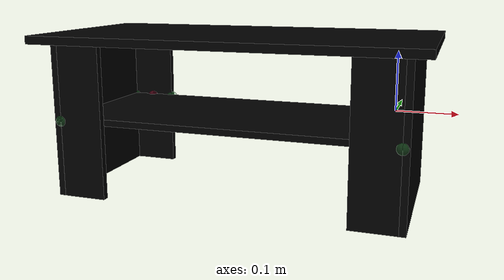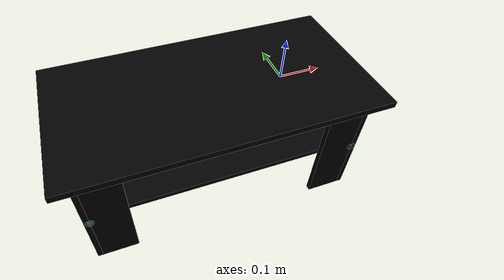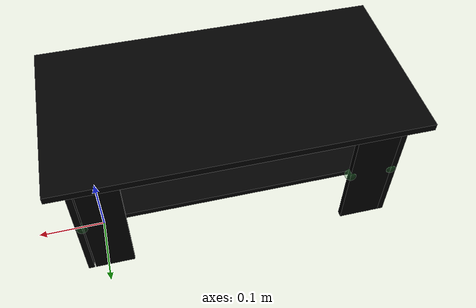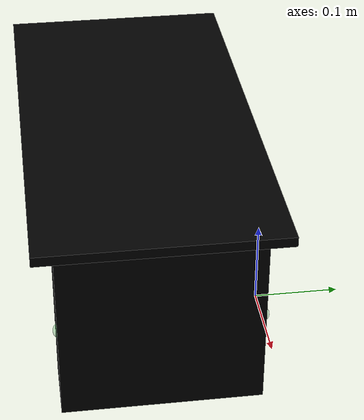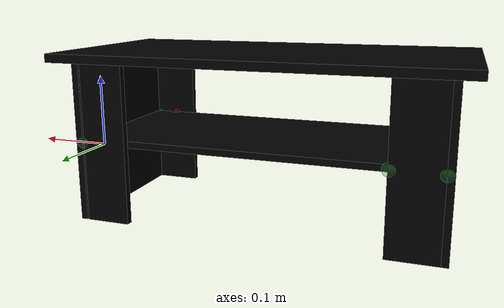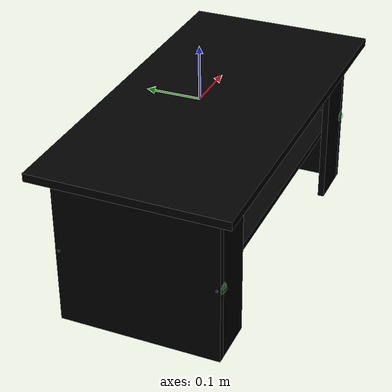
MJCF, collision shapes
<mujoco model="table_benno_0141">
  <custom>
    <numeric data="0.481747 0.210961 0.00505 -0.003953 0.003953 0.707096 -0.707096" name="0_part0_initpos" />
    <numeric data="0.071332 -0.159161 0.00632 0.0 -0.999969 -0.007934 -0.0" name="7_part7_initpos" />
    <numeric data="-0.419935 -0.164663 0.00505 0.707099 -0.0032 0.7071 0.0032" name="6_part6_initpos" />
    <numeric data="0.55709 -0.143364 0.00505 6.8e-05 0.707107 6.8e-05 -0.707107" name="5_part5_initpos" />
    <numeric data="0.086775 0.165266 0.00505 0.999999 -0.0 -0.0 -0.001302" name="4_part4_initpos" />
    <numeric data="0.635713 0.217374 0.00505 0.707104 0.707104 -0.00196 -0.00196" name="3_part3_initpos" />
    <numeric data="-0.457154 0.177846 0.00505 0.707104 0.707105 0.001793 0.001793" name="2_part2_initpos" />
    <numeric data="-0.295801 0.17976 0.00505 0.707089 -0.707089 -0.005055 0.005055" name="1_part1_initpos" />
  </custom>
  <asset>
    <mesh file="table_benno_0141/0.stl" name="part0" scale="0.0005 0.0005 0.0005" />
    <mesh file="table_benno_0141/7.stl" name="part7" scale="0.0005 0.0005 0.0005" />
    <mesh file="table_benno_0141/6.stl" name="part6" scale="0.0005 0.0005 0.0005" />
    <mesh file="table_benno_0141/5.stl" name="part5" scale="0.0005 0.0005 0.0005" />
    <mesh file="table_benno_0141/4.stl" name="part4" scale="0.0005 0.0005 0.0005" />
    <mesh file="table_benno_0141/3.stl" name="part3" scale="0.0005 0.0005 0.0005" />
    <mesh file="table_benno_0141/2.stl" name="part2" scale="0.0005 0.0005 0.0005" />
    <mesh file="table_benno_0141/1.stl" name="part1" scale="0.0005 0.0005 0.0005" />
  </asset>
  <equality>
    <weld active="false" body1="1_part1" body2="4_part4" solimp="1 1 0.5" solref="0.01 0.3" />
    <weld active="false" body1="0_part0" body2="4_part4" solimp="1 1 0.5" solref="0.01 0.3" />
    <weld active="false" body1="3_part3" body2="4_part4" solimp="1 1 0.5" solref="0.01 0.3" />
    <weld active="false" body1="2_part2" body2="4_part4" solimp="1 1 0.5" solref="0.01 0.3" />
    <weld active="false" body1="1_part1" body2="6_part6" solimp="1 1 0.5" solref="0.01 0.3" />
    <weld active="false" body1="1_part1" body2="5_part5" solimp="1 1 0.5" solref="0.01 0.3" />
    <weld active="false" body1="0_part0" body2="6_part6" solimp="1 1 0.5" solref="0.01 0.3" />
    <weld active="false" body1="0_part0" body2="5_part5" solimp="1 1 0.5" solref="0.01 0.3" />
    <weld active="false" body1="3_part3" body2="6_part6" solimp="1 1 0.5" solref="0.01 0.3" />
    <weld active="false" body1="3_part3" body2="5_part5" solimp="1 1 0.5" solref="0.01 0.3" />
    <weld active="false" body1="2_part2" body2="6_part6" solimp="1 1 0.5" solref="0.01 0.3" />
    <weld active="false" body1="2_part2" body2="5_part5" solimp="1 1 0.5" solref="0.01 0.3" />
    <weld active="false" body1="7_part7" body2="6_part6" solimp="1 1 0.5" solref="0.01 0.3" />
    <weld active="false" body1="7_part7" body2="5_part5" solimp="1 1 0.5" solref="0.01 0.3" />
  </equality>
  <worldbody>
    <body name="0_part0" pos="0.0 0.0 0.0" quat="1 0 0 0">
      <geom conaffinity="0" contype="0" density="0" mesh="part0" name="0_part0_mesh" pos="0.0 0.0 0.0" rgba="0.82 0.71 0.55 1" type="mesh" />
      <site name="0_part0_horizontal_radius_site" pos="0.0 0.0 0.0" quat="1 0 0 0" rgba="0 0 0 0" size="0.01" />
      <site name="0_part0_top_site" pos="0.0 0.0 0.12065000155" quat="1 0 0 0" rgba="0 0 0 0" size="0.01" />
      <site name="0_part0_bottom_site" pos="0.0 0.0 -0.12065000155" quat="1 0 0 0" rgba="0 0 0 0" size="0.01" />
      <site name="0_part0_corner_site8" pos="-0.0349250183 0.00508 0.12065000155" quat="1 0 0 0" rgba="0 0 0 0" size="0.01" />
      <site name="0_part0_corner_site7" pos="0.0349250183 0.00508 0.12065000155" quat="1 0 0 0" rgba="0 0 0 0" size="0.01" />
      <site name="0_part0_corner_site6" pos="0.0349250183 -0.00508 0.12065000155" quat="1 0 0 0" rgba="0 0 0 0" size="0.01" />
      <site name="0_part0_corner_site5" pos="-0.0349250183 -0.00508 0.12065000155" quat="1 0 0 0" rgba="0 0 0 0" size="0.01" />
      <site name="0_part0_corner_site4" pos="-0.0349250183 0.00508 -0.12065000155" quat="1 0 0 0" rgba="0 0 0 0" size="0.01" />
      <site name="0_part0_corner_site3" pos="0.0349250183 0.00508 -0.12065000155" quat="1 0 0 0" rgba="0 0 0 0" size="0.01" />
      <site name="0_part0_corner_site2" pos="0.0349250183 -0.00508 -0.12065000155" quat="1 0 0 0" rgba="0 0 0 0" size="0.01" />
      <site name="0_part0_corner_site1" pos="-0.0349250183 -0.00508 -0.12065000155" quat="1 0 0 0" rgba="0 0 0 0" size="0.01" />
      <site name="leg-botpanel,0,180,conn_site2" pos="0.0 -0.005 0.0" quat="0.7071067 -0.7071068 0 0" rgba="0.9019 0.0980 0.2941 0.3" size="0.01" />
      <site name="leg-sidepanel,0,180,conn_site2" pos="0.035 0 0" quat="0.7071067 0 0.7071068 0" rgba="0.2352 0.7058 0.2941 0.3" size="0.01" />
      <geom density="50" name="noviz_collision_0_part0_0" pos="-0.001155665 0.0 0.003592" quat="1 0 0 0" rgba="0 0 0 0" size="0.033769355 0.00508 0.124242" solref="0.001 1" type="box" />
    </body>
    <body name="7_part7" pos="-0.2247900042 -0.11953875 0.12699999845" quat="1 0 0 0">
      <geom conaffinity="0" contype="0" density="0" mesh="part7" name="7_part7_mesh" pos="0.0 0.0 0.0" rgba="0.82 0.71 0.55 1" type="mesh" />
      <site name="7_part7_horizontal_radius_site" pos="0.0 0.0 0.0" quat="1 0 0 0" rgba="0 0 0 0" size="0.01" />
      <site name="7_part7_top_site" pos="0.0 0.0 0.00635" quat="1 0 0 0" rgba="0 0 0 0" size="0.01" />
      <site name="7_part7_bottom_site" pos="0.0 0.0 -0.00635" quat="1 0 0 0" rgba="0 0 0 0" size="0.01" />
      <site name="7_part7_corner_site8" pos="-0.295275 0.15001875 0.00635" quat="1 0 0 0" rgba="0 0 0 0" size="0.01" />
      <site name="7_part7_corner_site7" pos="0.295275 0.15001875 0.00635" quat="1 0 0 0" rgba="0 0 0 0" size="0.01" />
      <site name="7_part7_corner_site6" pos="0.295275 -0.15001875 0.00635" quat="1 0 0 0" rgba="0 0 0 0" size="0.01" />
      <site name="7_part7_corner_site5" pos="-0.295275 -0.15001875 0.00635" quat="1 0 0 0" rgba="0 0 0 0" size="0.01" />
      <site name="7_part7_corner_site4" pos="-0.295275 0.15001875 -0.00635" quat="1 0 0 0" rgba="0 0 0 0" size="0.01" />
      <site name="7_part7_corner_site3" pos="0.295275 0.15001875 -0.00635" quat="1 0 0 0" rgba="0 0 0 0" size="0.01" />
      <site name="7_part7_corner_site2" pos="0.295275 -0.15001875 -0.00635" quat="1 0 0 0" rgba="0 0 0 0" size="0.01" />
      <site name="7_part7_corner_site1" pos="-0.295275 -0.15001875 -0.00635" quat="1 0 0 0" rgba="0 0 0 0" size="0.01" />
      <site name="toppanel-sidepanel,0,180,conn_site2" pos="0.26129 0.0 -0.00635" quat="1 0 0 0" rgba="1.0 0.8823 0.0980 0.3" size="0.01" />
      <site name="toppanel-sidepanel,0,180,conn_site1" pos="-0.26471 0.0 -0.00635" quat="1 0 0 0" rgba="1.0 0.8823 0.0980 0.3" size="0.01" />
      <geom density="50" name="noviz_collision_7_part7_0" pos="0.0 0.0 0.0" quat="1 0 0 0" rgba="0 0 0 0" size="0.295275 0.15001875 0.00635" solref="0.001 1" type="box" />
    </body>
    <body name="6_part6" pos="-0.48958500644999997 -0.11953875 0.0" quat="1 0 0 0">
      <geom conaffinity="0" contype="0" density="0" mesh="part6" name="6_part6_mesh" pos="0.0 0.0 0.0" rgba="0.82 0.71 0.55 1" type="mesh" />
      <site name="6_part6_horizontal_radius_site" pos="-5e-11 -0.0 0.0" quat="1 0 0 0" rgba="0 0 0 0" size="0.01" />
      <site name="6_part6_top_site" pos="-5e-11 0.0 0.12065000155" quat="1 0 0 0" rgba="0 0 0 0" size="0.01" />
      <site name="6_part6_bottom_site" pos="-5e-11 0.0 -0.12065000155" quat="1 0 0 0" rgba="0 0 0 0" size="0.01" />
      <site name="6_part6_corner_site8" pos="-0.005080002300000001 0.12461875000000001 0.12065000155" quat="1 0 0 0" rgba="0 0 0 0" size="0.01" />
      <site name="6_part6_corner_site7" pos="0.00508000215 0.12461875000000001 0.12065000155" quat="1 0 0 0" rgba="0 0 0 0" size="0.01" />
      <site name="6_part6_corner_site6" pos="0.00508000215 -0.12461875000000001 0.12065000155" quat="1 0 0 0" rgba="0 0 0 0" size="0.01" />
      <site name="6_part6_corner_site5" pos="-0.005080002300000001 -0.12461875000000001 0.12065000155" quat="1 0 0 0" rgba="0 0 0 0" size="0.01" />
      <site name="6_part6_corner_site4" pos="-0.005080002300000001 0.12461875000000001 -0.12065000155" quat="1 0 0 0" rgba="0 0 0 0" size="0.01" />
      <site name="6_part6_corner_site3" pos="0.00508000215 0.12461875000000001 -0.12065000155" quat="1 0 0 0" rgba="0 0 0 0" size="0.01" />
      <site name="6_part6_corner_site2" pos="0.00508000215 -0.12461875000000001 -0.12065000155" quat="1 0 0 0" rgba="0 0 0 0" size="0.01" />
      <site name="6_part6_corner_site1" pos="-0.005080002300000001 -0.12461875000000001 -0.12065000155" quat="1 0 0 0" rgba="0 0 0 0" size="0.01" />
      <site name="sidepanel-toppanel,0,180,conn_site1" pos="8.499e-05 0.0 0.12065000000000001" quat="1 0 0 0" rgba="1.0 0.8823 0.0980 0.3" size="0.01" />
      <site name="sidepanel-leg,0,180,conn_site4" pos="0.004584990000000001 -0.11946125 0.0" quat="0.7071067 0 -0.7071068 0" rgba="0.2352 0.7058 0.2941 0.3" size="0.01" />
      <site name="sidepanel-leg,0,180,conn_site3" pos="0.004584990000000001 0.11953875 0.0" quat="0.7071067 0 -0.7071068 0" rgba="0.2352 0.7058 0.2941 0.3" size="0.01" />
      <geom density="50" name="noviz_collision_6_part6_0" pos="0.0 0.0 0.0" quat="1 0 0 0" rgba="0 0 0 0" size="0.005080015 0.12461875000000001 0.12065000000000001" solref="0.001 1" type="box" />
    </body>
    <body name="5_part5" pos="0.040004995800000005 -0.11953875 0.0" quat="1 0 0 0">
      <geom conaffinity="0" contype="0" density="0" mesh="part5" name="5_part5_mesh" pos="0.0 0.0 0.0" rgba="0.82 0.71 0.55 1" type="mesh" />
      <site name="5_part5_horizontal_radius_site" pos="0.0 -0.0 0.0" quat="1 0 0 0" rgba="0 0 0 0" size="0.01" />
      <site name="5_part5_top_site" pos="0.0 0.0 0.12065000155" quat="1 0 0 0" rgba="0 0 0 0" size="0.01" />
      <site name="5_part5_bottom_site" pos="0.0 0.0 -0.12065000155" quat="1 0 0 0" rgba="0 0 0 0" size="0.01" />
      <site name="5_part5_corner_site8" pos="-0.00508 0.12461875000000001 0.12065000155" quat="1 0 0 0" rgba="0 0 0 0" size="0.01" />
      <site name="5_part5_corner_site7" pos="0.00508 0.12461875000000001 0.12065000155" quat="1 0 0 0" rgba="0 0 0 0" size="0.01" />
      <site name="5_part5_corner_site6" pos="0.00508 -0.12461875000000001 0.12065000155" quat="1 0 0 0" rgba="0 0 0 0" size="0.01" />
      <site name="5_part5_corner_site5" pos="-0.00508 -0.12461875000000001 0.12065000155" quat="1 0 0 0" rgba="0 0 0 0" size="0.01" />
      <site name="5_part5_corner_site4" pos="-0.00508 0.12461875000000001 -0.12065000155" quat="1 0 0 0" rgba="0 0 0 0" size="0.01" />
      <site name="5_part5_corner_site3" pos="0.00508 0.12461875000000001 -0.12065000155" quat="1 0 0 0" rgba="0 0 0 0" size="0.01" />
      <site name="5_part5_corner_site2" pos="0.00508 -0.12461875000000001 -0.12065000155" quat="1 0 0 0" rgba="0 0 0 0" size="0.01" />
      <site name="5_part5_corner_site1" pos="-0.00508 -0.12461875000000001 -0.12065000155" quat="1 0 0 0" rgba="0 0 0 0" size="0.01" />
      <site name="sidepanel-toppanel,0,180,conn_site2" pos="-0.0035049950000000003 0.0 0.12065000000000001" quat="1 0 0 0" rgba="1.0 0.8823 0.0980 0.3" size="0.01" />
      <site name="sidepanel-leg,0,180,conn_site2" pos="-0.005004995 -0.11946125 0.0" quat="0.7071067 0 0.7071068 0" rgba="0.2352 0.7058 0.2941 0.3" size="0.01" />
      <site name="sidepanel-leg,0,180,conn_site1" pos="-0.005004995 0.11953875 0.0" quat="0.7071067 0 0.7071068 0" rgba="0.2352 0.7058 0.2941 0.3" size="0.01" />
      <geom density="50" name="noviz_collision_5_part5_0" pos="0.0 0.0 0.0" quat="1 0 0 0" rgba="0 0 0 0" size="0.00508 0.12461875000000001 0.12065000000000001" solref="0.001 1" type="box" />
    </body>
    <body name="4_part4" pos="-0.2247900042 -0.11953875 -1.55e-09" quat="1 0 0 0">
      <geom conaffinity="0" contype="0" density="0" mesh="part4" name="4_part4_mesh" pos="0.0 0.0 0.0" rgba="0.82 0.71 0.55 1" type="mesh" />
      <site name="4_part4_horizontal_radius_site" pos="0.0 0.0 0.0" quat="1 0 0 0" rgba="0 0 0 0" size="0.01" />
      <site name="4_part4_top_site" pos="0.0 0.0 0.00508" quat="1 0 0 0" rgba="0 0 0 0" size="0.01" />
      <site name="4_part4_bottom_site" pos="0.0 0.0 -0.00508" quat="1 0 0 0" rgba="0 0 0 0" size="0.01" />
      <site name="4_part4_corner_site8" pos="-0.259715 0.11445875 0.00508" quat="1 0 0 0" rgba="0 0 0 0" size="0.01" />
      <site name="4_part4_corner_site7" pos="0.259715 0.11445875 0.00508" quat="1 0 0 0" rgba="0 0 0 0" size="0.01" />
      <site name="4_part4_corner_site6" pos="0.259715 -0.11445875 0.00508" quat="1 0 0 0" rgba="0 0 0 0" size="0.01" />
      <site name="4_part4_corner_site5" pos="-0.259715 -0.11445875 0.00508" quat="1 0 0 0" rgba="0 0 0 0" size="0.01" />
      <site name="4_part4_corner_site4" pos="-0.259715 0.11445875 -0.00508" quat="1 0 0 0" rgba="0 0 0 0" size="0.01" />
      <site name="4_part4_corner_site3" pos="0.259715 0.11445875 -0.00508" quat="1 0 0 0" rgba="0 0 0 0" size="0.01" />
      <site name="4_part4_corner_site2" pos="0.259715 -0.11445875 -0.00508" quat="1 0 0 0" rgba="0 0 0 0" size="0.01" />
      <site name="4_part4_corner_site1" pos="-0.259715 -0.11445875 -0.00508" quat="1 0 0 0" rgba="0 0 0 0" size="0.01" />
      <site name="botpanel-leg,0,180,conn_site4" pos="-0.22521000000000002 -0.11446125000000001 0.0" quat="0.7071067 0.7071068 0 0" rgba="0.9019 0.0980 0.2941 0.3" size="0.01" />
      <site name="botpanel-leg,0,180,conn_site3" pos="-0.22521000000000002 0.11453875 0.0" quat="0.7071067 -0.7071068 0 0" rgba="0.9019 0.0980 0.2941 0.3" size="0.01" />
      <site name="botpanel-leg,0,180,conn_site2" pos="0.22479 0.11453875 0.0" quat="0.7071067 -0.7071068 0 0" rgba="0.9019 0.0980 0.2941 0.3" size="0.01" />
      <site name="botpanel-leg,0,180,conn_site1" pos="0.22479 -0.11446125000000001 0.0" quat="0.7071067 0.7071068 0 0" rgba="0.9019 0.0980 0.2941 0.3" size="0.01" />
      <geom density="50" name="noviz_collision_4_part4_0" pos="0.0 0.0 0.0" quat="1 0 0 0" rgba="0 0 0 0" size="0.259715 0.11445875 0.00508" solref="0.001 1" type="box" />
    </body>
    <body name="3_part3" pos="-0.44958000945 -0.2390775 0.0" quat="1 0 0 0">
      <geom conaffinity="0" contype="0" density="0" mesh="part3" name="3_part3_mesh" pos="0.0 0.0 0.0" rgba="0.82 0.71 0.55 1" type="mesh" />
      <site name="3_part3_horizontal_radius_site" pos="0.0 -0.0 0.0" quat="1 0 0 0" rgba="0 0 0 0" size="0.01" />
      <site name="3_part3_top_site" pos="0.0 0.0 0.12065000155" quat="1 0 0 0" rgba="0 0 0 0" size="0.01" />
      <site name="3_part3_bottom_site" pos="0.0 0.0 -0.12065000155" quat="1 0 0 0" rgba="0 0 0 0" size="0.01" />
      <site name="3_part3_corner_site8" pos="-0.0349250107 0.00508 0.12065000155" quat="1 0 0 0" rgba="0 0 0 0" size="0.01" />
      <site name="3_part3_corner_site7" pos="0.0349250107 0.00508 0.12065000155" quat="1 0 0 0" rgba="0 0 0 0" size="0.01" />
      <site name="3_part3_corner_site6" pos="0.0349250107 -0.00508 0.12065000155" quat="1 0 0 0" rgba="0 0 0 0" size="0.01" />
      <site name="3_part3_corner_site5" pos="-0.0349250107 -0.00508 0.12065000155" quat="1 0 0 0" rgba="0 0 0 0" size="0.01" />
      <site name="3_part3_corner_site4" pos="-0.0349250107 0.00508 -0.12065000155" quat="1 0 0 0" rgba="0 0 0 0" size="0.01" />
      <site name="3_part3_corner_site3" pos="0.0349250107 0.00508 -0.12065000155" quat="1 0 0 0" rgba="0 0 0 0" size="0.01" />
      <site name="3_part3_corner_site2" pos="0.0349250107 -0.00508 -0.12065000155" quat="1 0 0 0" rgba="0 0 0 0" size="0.01" />
      <site name="3_part3_corner_site1" pos="-0.0349250107 -0.00508 -0.12065000155" quat="1 0 0 0" rgba="0 0 0 0" size="0.01" />
      <site name="leg-botpanel,0,180,conn_site4" pos="-0.000419985 0.0050774999999999995 0.0" quat="0.7071067 0.7071068 0 0" rgba="0.9019 0.0980 0.2941 0.3" size="0.01" />
      <site name="leg-sidepanel,0,180,conn_site4" pos="-0.035419985 7.75e-05 0.0" quat="0.7071067 0 -0.7071068 0" rgba="0.2352 0.7058 0.2941 0.3" size="0.01" />
      <geom density="50" name="noviz_collision_3_part3_0" pos="0.0 0.0 0.0" quat="1 0 0 0" rgba="0 0 0 0" size="0.03492502 0.00508 0.12065000000000001" solref="0.001 1" type="box" />
    </body>
    <body name="2_part2" pos="0.0 -0.2390775 0.0" quat="1 0 0 0">
      <geom conaffinity="0" contype="0" density="0" mesh="part2" name="2_part2_mesh" pos="0.0 0.0 0.0" rgba="0.82 0.71 0.55 1" type="mesh" />
      <site name="2_part2_horizontal_radius_site" pos="0.0 -0.0 0.0" quat="1 0 0 0" rgba="0 0 0 0" size="0.01" />
      <site name="2_part2_top_site" pos="0.0 0.0 0.12065000155" quat="1 0 0 0" rgba="0 0 0 0" size="0.01" />
      <site name="2_part2_bottom_site" pos="0.0 0.0 -0.12065000155" quat="1 0 0 0" rgba="0 0 0 0" size="0.01" />
      <site name="2_part2_corner_site8" pos="-0.0349250183 0.00508 0.12065000155" quat="1 0 0 0" rgba="0 0 0 0" size="0.01" />
      <site name="2_part2_corner_site7" pos="0.0349250183 0.00508 0.12065000155" quat="1 0 0 0" rgba="0 0 0 0" size="0.01" />
      <site name="2_part2_corner_site6" pos="0.0349250183 -0.00508 0.12065000155" quat="1 0 0 0" rgba="0 0 0 0" size="0.01" />
      <site name="2_part2_corner_site5" pos="-0.0349250183 -0.00508 0.12065000155" quat="1 0 0 0" rgba="0 0 0 0" size="0.01" />
      <site name="2_part2_corner_site4" pos="-0.0349250183 0.00508 -0.12065000155" quat="1 0 0 0" rgba="0 0 0 0" size="0.01" />
      <site name="2_part2_corner_site3" pos="0.0349250183 0.00508 -0.12065000155" quat="1 0 0 0" rgba="0 0 0 0" size="0.01" />
      <site name="2_part2_corner_site2" pos="0.0349250183 -0.00508 -0.12065000155" quat="1 0 0 0" rgba="0 0 0 0" size="0.01" />
      <site name="2_part2_corner_site1" pos="-0.0349250183 -0.00508 -0.12065000155" quat="1 0 0 0" rgba="0 0 0 0" size="0.01" />
      <site name="leg-botpanel,0,180,conn_site1" pos="0.0 0.0050774999999999995 0.0" quat="0.7071067 0.7071068 0 0" rgba="0.9019 0.0980 0.2941 0.3" size="0.01" />
      <site name="leg-sidepanel,0,180,conn_site1" pos="0.035 0.0000775 0" quat="0.7071067 0 0.7071068 0" rgba="0.2352 0.7058 0.2941 0.3" size="0.01" />
      <geom density="50" name="noviz_collision_2_part2_0" pos="-5e-09 0.0 0.0" quat="1 0 0 0" rgba="0 0 0 0" size="0.034925015000000004 0.00508 0.12065000000000001" solref="0.001 1" type="box" />
    </body>
    <body name="1_part1" pos="-0.44958000945 0.0 0.0" quat="1 0 0 0">
      <geom conaffinity="0" contype="0" density="0" mesh="part1" name="1_part1_mesh" pos="0.0 0.0 0.0" rgba="0.82 0.71 0.55 1" type="mesh" />
      <site name="1_part1_horizontal_radius_site" pos="0.0 0.0 0.0" quat="1 0 0 0" rgba="0 0 0 0" size="0.01" />
      <site name="1_part1_top_site" pos="0.0 0.0 0.12065000155" quat="1 0 0 0" rgba="0 0 0 0" size="0.01" />
      <site name="1_part1_bottom_site" pos="0.0 0.0 -0.12065000155" quat="1 0 0 0" rgba="0 0 0 0" size="0.01" />
      <site name="1_part1_corner_site8" pos="-0.0349250107 0.00508 0.12065000155" quat="1 0 0 0" rgba="0 0 0 0" size="0.01" />
      <site name="1_part1_corner_site7" pos="0.0349250107 0.00508 0.12065000155" quat="1 0 0 0" rgba="0 0 0 0" size="0.01" />
      <site name="1_part1_corner_site6" pos="0.0349250107 -0.00508 0.12065000155" quat="1 0 0 0" rgba="0 0 0 0" size="0.01" />
      <site name="1_part1_corner_site5" pos="-0.0349250107 -0.00508 0.12065000155" quat="1 0 0 0" rgba="0 0 0 0" size="0.01" />
      <site name="1_part1_corner_site4" pos="-0.0349250107 0.00508 -0.12065000155" quat="1 0 0 0" rgba="0 0 0 0" size="0.01" />
      <site name="1_part1_corner_site3" pos="0.0349250107 0.00508 -0.12065000155" quat="1 0 0 0" rgba="0 0 0 0" size="0.01" />
      <site name="1_part1_corner_site2" pos="0.0349250107 -0.00508 -0.12065000155" quat="1 0 0 0" rgba="0 0 0 0" size="0.01" />
      <site name="1_part1_corner_site1" pos="-0.0349250107 -0.00508 -0.12065000155" quat="1 0 0 0" rgba="0 0 0 0" size="0.01" />
      <site name="leg-botpanel,0,180,conn_site3" pos="-0.000419985 -0.005 0.0" quat="0.7071067 -0.7071068 0 0" rgba="0.9019 0.0980 0.2941 0.3" size="0.01" />
      <site name="leg-sidepanel,0,180,conn_site3" pos="0.035419985 0.0 0.0" quat="0.7071067 0 -0.7071068 0" rgba="0.2352 0.7058 0.2941 0.3" size="0.01" />
      <geom density="50" name="noviz_collision_1_part1_0" pos="0.00115567 0.0 0.003592" quat="1 0 0 0" rgba="0 0 0 0" size="0.03608069 0.00508 0.124242" solref="0.001 1" type="box" />
    </body>
  </worldbody>
  <actuator />
  <sensor />
  <contact />
  <default />
</mujoco>
